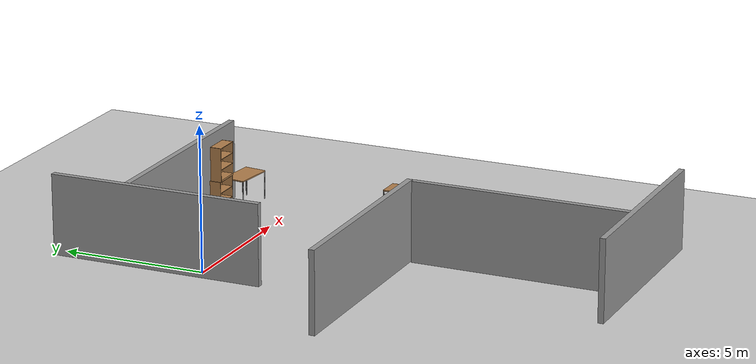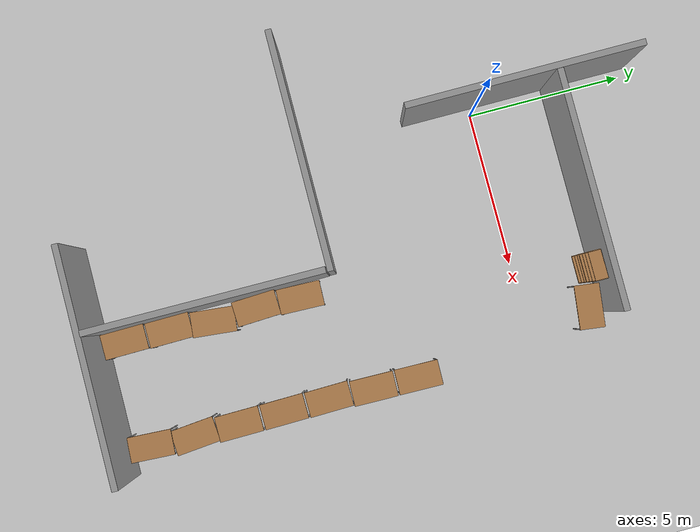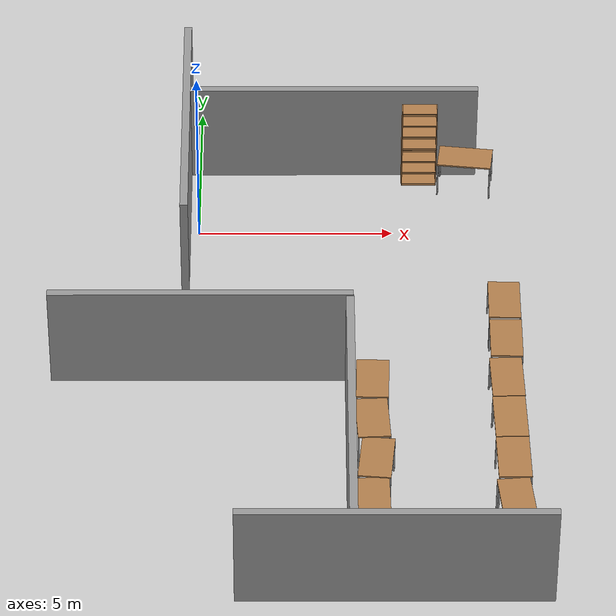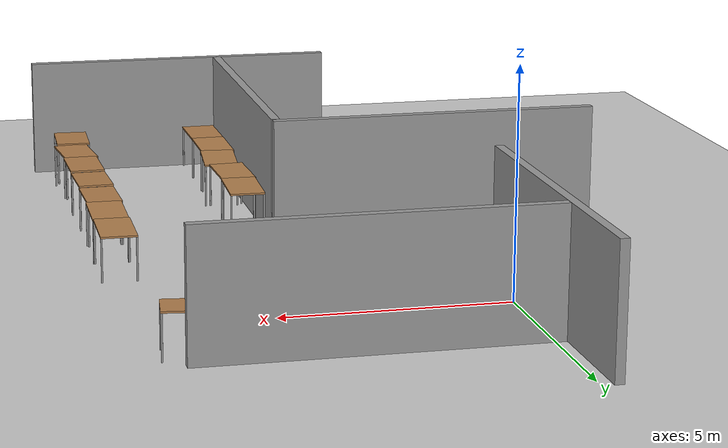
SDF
<sdf version="1.6">
 <world name="default">
  <model name="ground_plane">
   <static>1</static>
   <link name="link">
    <collision name="collision">
     <geometry><plane><normal>0 0 1</normal><size>100 100</size></plane></geometry>
     <surface><friction><ode><mu>100</mu><mu2>50</mu2></ode></friction></surface>
    </collision>
    <visual name="visual">
     <cast_shadows>0</cast_shadows>
     <geometry><plane><normal>0 0 1</normal><size>100 100</size></plane></geometry>
     <material>
      <script><uri>file://media/materials/scripts/gazebo.material</uri><name>Gazebo/Grey</name></script>
     </material>
    </visual>
   </link>
  </model>
  <model name="grey_wall">
   <static>1</static>
   <link name="link">
    <pose>0 0 1.4 0 -0 0</pose>
    <collision name="collision"><geometry><box><size>7.5 0.2 2.8</size></box></geometry></collision>
    <visual name="visual">
     <cast_shadows>0</cast_shadows>
     <geometry><box><size>7.5 0.2 2.8</size></box></geometry>
     <material>
      <script>
       <uri>model://grey_wall/materials/scripts</uri>
       <uri>model://grey_wall/materials/textures</uri>
       <name>vrc/grey_wall</name>
      </script>
     </material>
    </visual>
   </link>
   <pose>3.5138 2.55142 0 0 -0 0</pose>
  </model>
  <model name="grey_wall_2">
   <static>1</static>
   <link name="link">
    <pose>0 0 1.4 0 -0 0</pose>
    <collision name="collision"><geometry><box><size>7.5 0.2 2.8</size></box></geometry></collision>
    <visual name="visual">
     <cast_shadows>0</cast_shadows>
     <geometry><box><size>7.5 0.2 2.8</size></box></geometry>
     <material>
      <script>
       <uri>model://grey_wall/materials/scripts</uri>
       <uri>model://grey_wall/materials/textures</uri>
       <name>vrc/grey_wall</name>
      </script>
     </material>
    </visual>
   </link>
   <pose>-0.336177 1.50281 0 0 0 -1.56581</pose>
  </model>
  <model name="grey_wall_3">
   <static>1</static>
   <link name="link">
    <pose>0 0 1.4 0 -0 0</pose>
    <collision name="collision"><geometry><box><size>7.5 0.2 2.8</size></box></geometry></collision>
    <visual name="visual">
     <cast_shadows>0</cast_shadows>
     <geometry><box><size>7.5 0.2 2.8</size></box></geometry>
     <material>
      <script>
       <uri>model://grey_wall/materials/scripts</uri>
       <uri>model://grey_wall/materials/textures</uri>
       <name>vrc/grey_wall</name>
      </script>
     </material>
    </visual>
   </link>
   <pose>0.159876 -5.6283 0 0 -0 0</pose>
  </model>
  <model name="grey_wall_4">
   <static>1</static>
   <link name="link">
    <pose>0 0 1.4 0 -0 0</pose>
    <collision name="collision"><geometry><box><size>7.5 0.2 2.8</size></box></geometry></collision>
    <visual name="visual">
     <cast_shadows>0</cast_shadows>
     <geometry><box><size>7.5 0.2 2.8</size></box></geometry>
     <material>
      <script>
       <uri>model://grey_wall/materials/scripts</uri>
       <uri>model://grey_wall/materials/textures</uri>
       <name>vrc/grey_wall</name>
      </script>
     </material>
    </visual>
   </link>
   <pose>3.82152 -9.51174 0 0 0 -1.57182</pose>
  </model>
  <model name="grey_wall_7">
   <static>1</static>
   <link name="link">
    <pose>0 0 1.4 0 -0 0</pose>
    <collision name="collision"><geometry><box><size>7.5 0.2 2.8</size></box></geometry></collision>
    <visual name="visual">
     <cast_shadows>0</cast_shadows>
     <geometry><box><size>7.5 0.2 2.8</size></box></geometry>
     <material>
      <script>
       <uri>model://grey_wall/materials/scripts</uri>
       <uri>model://grey_wall/materials/textures</uri>
       <name>vrc/grey_wall</name>
      </script>
     </material>
    </visual>
   </link>
   <pose>4.80097 -13.3442 0 0 -0 0</pose>
  </model>
  <model name="table">
   <static>0</static>
   <link name="link">
    <collision name="surface">
     <pose>0 0 1 0 -0 0</pose>
     <geometry><box><size>1.5 0.8 0.03</size></box></geometry>
     <surface><friction><ode><mu>0.6</mu><mu2>0.6</mu2></ode></friction></surface>
    </collision>
    <visual name="visual1">
     <pose>0 0 1 0 -0 0</pose>
     <geometry><box><size>1.4 0.8 0.04</size></box></geometry>
     <material>
      <script><uri>file://media/materials/scripts/gazebo.material</uri><name>Gazebo/Wood</name></script>
     </material>
    </visual>
    <collision name="front_left_leg">
     <pose>0.68 0.38 0.5 0 -0 0</pose>
     <geometry><cylinder><radius>0.02</radius><length>1</length></cylinder></geometry>
    </collision>
    <visual name="front_left_leg">
     <pose>0.68 0.38 0.5 0 -0 0</pose>
     <geometry><cylinder><radius>0.02</radius><length>1</length></cylinder></geometry>
     <material>
      <script><uri>file://media/materials/scripts/gazebo.material</uri><name>Gazebo/Grey</name></script>
     </material>
    </visual>
    <collision name="front_right_leg">
     <pose>0.68 -0.38 0.5 0 -0 0</pose>
     <geometry><cylinder><radius>0.02</radius><length>1</length></cylinder></geometry>
    </collision>
    <visual name="front_right_leg">
     <pose>0.68 -0.38 0.5 0 -0 0</pose>
     <geometry><cylinder><radius>0.02</radius><length>1</length></cylinder></geometry>
     <material>
      <script><uri>file://media/materials/scripts/gazebo.material</uri><name>Gazebo/Grey</name></script>
     </material>
    </visual>
    <collision name="back_right_leg">
     <pose>-0.68 -0.38 0.5 0 -0 0</pose>
     <geometry><cylinder><radius>0.02</radius><length>1</length></cylinder></geometry>
    </collision>
    <visual name="back_right_leg">
     <pose>-0.68 -0.38 0.5 0 -0 0</pose>
     <geometry><cylinder><radius>0.02</radius><length>1</length></cylinder></geometry>
     <material>
      <script><uri>file://media/materials/scripts/gazebo.material</uri><name>Gazebo/Grey</name></script>
     </material>
    </visual>
    <collision name="back_left_leg">
     <pose>-0.68 0.38 0.5 0 -0 0</pose>
     <geometry><cylinder><radius>0.02</radius><length>1</length></cylinder></geometry>
    </collision>
    <visual name="back_left_leg">
     <pose>-0.68 0.38 0.5 0 -0 0</pose>
     <geometry><cylinder><radius>0.02</radius><length>1</length></cylinder></geometry>
     <material>
      <script><uri>file://media/materials/scripts/gazebo.material</uri><name>Gazebo/Grey</name></script>
     </material>
    </visual>
    <inertial>
     <inertia><ixx>1</ixx><ixy>0</ixy><ixz>0</ixz><iyy>1</iyy><iyz>0</iyz><izz>1</izz></inertia>
     <mass>1</mass>
    </inertial>
   </link>
   <pose>6.95725 1.92115 -0.00016 -1.1e-05 -7.6e-05 -0.121078</pose>
  </model>
  <model name="bookshelf_0">
   <static>1</static>
   <link name="link">
    <inertial><mass>1</mass></inertial>
    <collision name="back">
     <pose>0 0.005 0.6 0 -0 0</pose>
     <geometry><box><size>0.9 0.01 1.2</size></box></geometry>
    </collision>
    <visual name="visual1">
     <pose>0 0.005 0.6 0 -0 0</pose>
     <geometry><box><size>0.9 0.01 1.2</size></box></geometry>
     <material>
      <script><uri>file://media/materials/scripts/gazebo.material</uri><name>Gazebo/Wood</name></script>
     </material>
    </visual>
    <collision name="left_side">
     <pose>0.45 -0.195 0.6 0 -0 0</pose>
     <geometry><box><size>0.02 0.4 1.2</size></box></geometry>
    </collision>
    <visual name="visual2">
     <pose>0.45 -0.195 0.6 0 -0 0</pose>
     <geometry><box><size>0.02 0.4 1.2</size></box></geometry>
     <material>
      <script><uri>file://media/materials/scripts/gazebo.material</uri><name>Gazebo/Wood</name></script>
     </material>
    </visual>
    <collision name="right_side">
     <pose>-0.45 -0.195 0.6 0 -0 0</pose>
     <geometry><box><size>0.02 0.4 1.2</size></box></geometry>
    </collision>
    <visual name="visual3">
     <pose>-0.45 -0.195 0.6 0 -0 0</pose>
     <geometry><box><size>0.02 0.4 1.2</size></box></geometry>
     <material>
      <script><uri>file://media/materials/scripts/gazebo.material</uri><name>Gazebo/Wood</name></script>
     </material>
    </visual>
    <collision name="bottom">
     <pose>0 -0.195 0.03 0 -0 0</pose>
     <geometry><box><size>0.88 0.4 0.06</size></box></geometry>
    </collision>
    <visual name="visual4">
     <pose>0 -0.195 0.03 0 -0 0</pose>
     <geometry><box><size>0.88 0.4 0.06</size></box></geometry>
     <material>
      <script><uri>file://media/materials/scripts/gazebo.material</uri><name>Gazebo/Wood</name></script>
     </material>
    </visual>
    <collision name="top">
     <pose>0 -0.195 1.19 0 -0 0</pose>
     <geometry><box><size>0.88 0.4 0.02</size></box></geometry>
    </collision>
    <visual name="visual5">
     <pose>0 -0.195 1.19 0 -0 0</pose>
     <geometry><box><size>0.88 0.4 0.02</size></box></geometry>
     <material>
      <script><uri>file://media/materials/scripts/gazebo.material</uri><name>Gazebo/Wood</name></script>
     </material>
    </visual>
    <collision name="low_shelf">
     <pose>0 -0.195 0.43 0 -0 0</pose>
     <geometry><box><size>0.88 0.4 0.02</size></box></geometry>
    </collision>
    <visual name="visual6">
     <pose>0 -0.195 0.43 0 -0 0</pose>
     <geometry><box><size>0.88 0.4 0.02</size></box></geometry>
     <material>
      <script><uri>file://media/materials/scripts/gazebo.material</uri><name>Gazebo/Wood</name></script>
     </material>
    </visual>
    <collision name="high_shelf">
     <pose>0 -0.195 0.8 0 -0 0</pose>
     <geometry><box><size>0.88 0.4 0.02</size></box></geometry>
    </collision>
    <visual name="visual7">
     <pose>0 -0.195 0.8 0 -0 0</pose>
     <geometry><box><size>0.88 0.4 0.02</size></box></geometry>
     <material>
      <script><uri>file://media/materials/scripts/gazebo.material</uri><name>Gazebo/Wood</name></script>
     </material>
    </visual>
   </link>
   <pose>5.75252 2.40431 0 0 -0 0</pose>
  </model>
  <model name="bookshelf_1">
   <static>1</static>
   <link name="link">
    <inertial><mass>1</mass></inertial>
    <collision name="back">
     <pose>0 0.005 0.6 0 -0 0</pose>
     <geometry><box><size>0.9 0.01 1.2</size></box></geometry>
    </collision>
    <visual name="visual1">
     <pose>0 0.005 0.6 0 -0 0</pose>
     <geometry><box><size>0.9 0.01 1.2</size></box></geometry>
     <material>
      <script><uri>file://media/materials/scripts/gazebo.material</uri><name>Gazebo/Wood</name></script>
     </material>
    </visual>
    <collision name="left_side">
     <pose>0.45 -0.195 0.6 0 -0 0</pose>
     <geometry><box><size>0.02 0.4 1.2</size></box></geometry>
    </collision>
    <visual name="visual2">
     <pose>0.45 -0.195 0.6 0 -0 0</pose>
     <geometry><box><size>0.02 0.4 1.2</size></box></geometry>
     <material>
      <script><uri>file://media/materials/scripts/gazebo.material</uri><name>Gazebo/Wood</name></script>
     </material>
    </visual>
    <collision name="right_side">
     <pose>-0.45 -0.195 0.6 0 -0 0</pose>
     <geometry><box><size>0.02 0.4 1.2</size></box></geometry>
    </collision>
    <visual name="visual3">
     <pose>-0.45 -0.195 0.6 0 -0 0</pose>
     <geometry><box><size>0.02 0.4 1.2</size></box></geometry>
     <material>
      <script><uri>file://media/materials/scripts/gazebo.material</uri><name>Gazebo/Wood</name></script>
     </material>
    </visual>
    <collision name="bottom">
     <pose>0 -0.195 0.03 0 -0 0</pose>
     <geometry><box><size>0.88 0.4 0.06</size></box></geometry>
    </collision>
    <visual name="visual4">
     <pose>0 -0.195 0.03 0 -0 0</pose>
     <geometry><box><size>0.88 0.4 0.06</size></box></geometry>
     <material>
      <script><uri>file://media/materials/scripts/gazebo.material</uri><name>Gazebo/Wood</name></script>
     </material>
    </visual>
    <collision name="top">
     <pose>0 -0.195 1.19 0 -0 0</pose>
     <geometry><box><size>0.88 0.4 0.02</size></box></geometry>
    </collision>
    <visual name="visual5">
     <pose>0 -0.195 1.19 0 -0 0</pose>
     <geometry><box><size>0.88 0.4 0.02</size></box></geometry>
     <material>
      <script><uri>file://media/materials/scripts/gazebo.material</uri><name>Gazebo/Wood</name></script>
     </material>
    </visual>
    <collision name="low_shelf">
     <pose>0 -0.195 0.43 0 -0 0</pose>
     <geometry><box><size>0.88 0.4 0.02</size></box></geometry>
    </collision>
    <visual name="visual6">
     <pose>0 -0.195 0.43 0 -0 0</pose>
     <geometry><box><size>0.88 0.4 0.02</size></box></geometry>
     <material>
      <script><uri>file://media/materials/scripts/gazebo.material</uri><name>Gazebo/Wood</name></script>
     </material>
    </visual>
    <collision name="high_shelf">
     <pose>0 -0.195 0.8 0 -0 0</pose>
     <geometry><box><size>0.88 0.4 0.02</size></box></geometry>
    </collision>
    <visual name="visual7">
     <pose>0 -0.195 0.8 0 -0 0</pose>
     <geometry><box><size>0.88 0.4 0.02</size></box></geometry>
     <material>
      <script><uri>file://media/materials/scripts/gazebo.material</uri><name>Gazebo/Wood</name></script>
     </material>
    </visual>
   </link>
   <pose>5.74756 2.36627 1.21604 0 -0 0</pose>
  </model>
  <model name="table_5_clone_3">
   <static>0</static>
   <link name="link">
    <collision name="surface">
     <pose>0 0 1 0 -0 0</pose>
     <geometry><box><size>1.5 0.8 0.03</size></box></geometry>
     <surface><friction><ode><mu>0.6</mu><mu2>0.6</mu2></ode></friction></surface>
    </collision>
    <visual name="visual1">
     <pose>0 0 1 0 -0 0</pose>
     <geometry><box><size>1.4 0.8 0.04</size></box></geometry>
     <material>
      <script><uri>file://media/materials/scripts/gazebo.material</uri><name>Gazebo/Wood</name></script>
     </material>
    </visual>
    <collision name="front_left_leg">
     <pose>0.68 0.38 0.5 0 -0 0</pose>
     <geometry><cylinder><radius>0.02</radius><length>1</length></cylinder></geometry>
    </collision>
    <visual name="front_left_leg">
     <pose>0.68 0.38 0.5 0 -0 0</pose>
     <geometry><cylinder><radius>0.02</radius><length>1</length></cylinder></geometry>
     <material>
      <script><uri>file://media/materials/scripts/gazebo.material</uri><name>Gazebo/Grey</name></script>
     </material>
    </visual>
    <collision name="front_right_leg">
     <pose>0.68 -0.38 0.5 0 -0 0</pose>
     <geometry><cylinder><radius>0.02</radius><length>1</length></cylinder></geometry>
    </collision>
    <visual name="front_right_leg">
     <pose>0.68 -0.38 0.5 0 -0 0</pose>
     <geometry><cylinder><radius>0.02</radius><length>1</length></cylinder></geometry>
     <material>
      <script><uri>file://media/materials/scripts/gazebo.material</uri><name>Gazebo/Grey</name></script>
     </material>
    </visual>
    <collision name="back_right_leg">
     <pose>-0.68 -0.38 0.5 0 -0 0</pose>
     <geometry><cylinder><radius>0.02</radius><length>1</length></cylinder></geometry>
    </collision>
    <visual name="back_right_leg">
     <pose>-0.68 -0.38 0.5 0 -0 0</pose>
     <geometry><cylinder><radius>0.02</radius><length>1</length></cylinder></geometry>
     <material>
      <script><uri>file://media/materials/scripts/gazebo.material</uri><name>Gazebo/Grey</name></script>
     </material>
    </visual>
    <collision name="back_left_leg">
     <pose>-0.68 0.38 0.5 0 -0 0</pose>
     <geometry><cylinder><radius>0.02</radius><length>1</length></cylinder></geometry>
    </collision>
    <visual name="back_left_leg">
     <pose>-0.68 0.38 0.5 0 -0 0</pose>
     <geometry><cylinder><radius>0.02</radius><length>1</length></cylinder></geometry>
     <material>
      <script><uri>file://media/materials/scripts/gazebo.material</uri><name>Gazebo/Grey</name></script>
     </material>
    </visual>
    <inertial>
     <inertia><ixx>1</ixx><ixy>0</ixy><ixz>0</ixz><iyy>1</iyy><iyz>0</iyz><izz>1</izz></inertia>
     <mass>1</mass>
    </inertial>
   </link>
   <pose>7.68511 -6.73105 -1.7e-05 -1e-06 -5e-06 -1.54956</pose>
  </model>
  <model name="table_5_clone_4">
   <static>0</static>
   <link name="link">
    <collision name="surface">
     <pose>0 0 1 0 -0 0</pose>
     <geometry><box><size>1.5 0.8 0.03</size></box></geometry>
     <surface><friction><ode><mu>0.6</mu><mu2>0.6</mu2></ode></friction></surface>
    </collision>
    <visual name="visual1">
     <pose>0 0 1 0 -0 0</pose>
     <geometry><box><size>1.4 0.8 0.04</size></box></geometry>
     <material>
      <script><uri>file://media/materials/scripts/gazebo.material</uri><name>Gazebo/Wood</name></script>
     </material>
    </visual>
    <collision name="front_left_leg">
     <pose>0.68 0.38 0.5 0 -0 0</pose>
     <geometry><cylinder><radius>0.02</radius><length>1</length></cylinder></geometry>
    </collision>
    <visual name="front_left_leg">
     <pose>0.68 0.38 0.5 0 -0 0</pose>
     <geometry><cylinder><radius>0.02</radius><length>1</length></cylinder></geometry>
     <material>
      <script><uri>file://media/materials/scripts/gazebo.material</uri><name>Gazebo/Grey</name></script>
     </material>
    </visual>
    <collision name="front_right_leg">
     <pose>0.68 -0.38 0.5 0 -0 0</pose>
     <geometry><cylinder><radius>0.02</radius><length>1</length></cylinder></geometry>
    </collision>
    <visual name="front_right_leg">
     <pose>0.68 -0.38 0.5 0 -0 0</pose>
     <geometry><cylinder><radius>0.02</radius><length>1</length></cylinder></geometry>
     <material>
      <script><uri>file://media/materials/scripts/gazebo.material</uri><name>Gazebo/Grey</name></script>
     </material>
    </visual>
    <collision name="back_right_leg">
     <pose>-0.68 -0.38 0.5 0 -0 0</pose>
     <geometry><cylinder><radius>0.02</radius><length>1</length></cylinder></geometry>
    </collision>
    <visual name="back_right_leg">
     <pose>-0.68 -0.38 0.5 0 -0 0</pose>
     <geometry><cylinder><radius>0.02</radius><length>1</length></cylinder></geometry>
     <material>
      <script><uri>file://media/materials/scripts/gazebo.material</uri><name>Gazebo/Grey</name></script>
     </material>
    </visual>
    <collision name="back_left_leg">
     <pose>-0.68 0.38 0.5 0 -0 0</pose>
     <geometry><cylinder><radius>0.02</radius><length>1</length></cylinder></geometry>
    </collision>
    <visual name="back_left_leg">
     <pose>-0.68 0.38 0.5 0 -0 0</pose>
     <geometry><cylinder><radius>0.02</radius><length>1</length></cylinder></geometry>
     <material>
      <script><uri>file://media/materials/scripts/gazebo.material</uri><name>Gazebo/Grey</name></script>
     </material>
    </visual>
    <inertial>
     <inertia><ixx>1</ixx><ixy>0</ixy><ixz>0</ixz><iyy>1</iyy><iyz>0</iyz><izz>1</izz></inertia>
     <mass>1</mass>
    </inertial>
   </link>
   <pose>7.69986 -8.16028 0.015103 0 0.021577 -1.54957</pose>
  </model>
  <model name="table_5_clone_5">
   <static>0</static>
   <link name="link">
    <collision name="surface">
     <pose>0 0 1 0 -0 0</pose>
     <geometry><box><size>1.5 0.8 0.03</size></box></geometry>
     <surface><friction><ode><mu>0.6</mu><mu2>0.6</mu2></ode></friction></surface>
    </collision>
    <visual name="visual1">
     <pose>0 0 1 0 -0 0</pose>
     <geometry><box><size>1.4 0.8 0.04</size></box></geometry>
     <material>
      <script><uri>file://media/materials/scripts/gazebo.material</uri><name>Gazebo/Wood</name></script>
     </material>
    </visual>
    <collision name="front_left_leg">
     <pose>0.68 0.38 0.5 0 -0 0</pose>
     <geometry><cylinder><radius>0.02</radius><length>1</length></cylinder></geometry>
    </collision>
    <visual name="front_left_leg">
     <pose>0.68 0.38 0.5 0 -0 0</pose>
     <geometry><cylinder><radius>0.02</radius><length>1</length></cylinder></geometry>
     <material>
      <script><uri>file://media/materials/scripts/gazebo.material</uri><name>Gazebo/Grey</name></script>
     </material>
    </visual>
    <collision name="front_right_leg">
     <pose>0.68 -0.38 0.5 0 -0 0</pose>
     <geometry><cylinder><radius>0.02</radius><length>1</length></cylinder></geometry>
    </collision>
    <visual name="front_right_leg">
     <pose>0.68 -0.38 0.5 0 -0 0</pose>
     <geometry><cylinder><radius>0.02</radius><length>1</length></cylinder></geometry>
     <material>
      <script><uri>file://media/materials/scripts/gazebo.material</uri><name>Gazebo/Grey</name></script>
     </material>
    </visual>
    <collision name="back_right_leg">
     <pose>-0.68 -0.38 0.5 0 -0 0</pose>
     <geometry><cylinder><radius>0.02</radius><length>1</length></cylinder></geometry>
    </collision>
    <visual name="back_right_leg">
     <pose>-0.68 -0.38 0.5 0 -0 0</pose>
     <geometry><cylinder><radius>0.02</radius><length>1</length></cylinder></geometry>
     <material>
      <script><uri>file://media/materials/scripts/gazebo.material</uri><name>Gazebo/Grey</name></script>
     </material>
    </visual>
    <collision name="back_left_leg">
     <pose>-0.68 0.38 0.5 0 -0 0</pose>
     <geometry><cylinder><radius>0.02</radius><length>1</length></cylinder></geometry>
    </collision>
    <visual name="back_left_leg">
     <pose>-0.68 0.38 0.5 0 -0 0</pose>
     <geometry><cylinder><radius>0.02</radius><length>1</length></cylinder></geometry>
     <material>
      <script><uri>file://media/materials/scripts/gazebo.material</uri><name>Gazebo/Grey</name></script>
     </material>
    </visual>
    <inertial>
     <inertia><ixx>1</ixx><ixy>0</ixy><ixz>0</ixz><iyy>1</iyy><iyz>0</iyz><izz>1</izz></inertia>
     <mass>1</mass>
    </inertial>
   </link>
   <pose>7.68689 -12.4351 0.016255 -9e-06 0.023245 -1.61942</pose>
  </model>
  <model name="table_5_clone_6">
   <static>0</static>
   <link name="link">
    <collision name="surface">
     <pose>0 0 1 0 -0 0</pose>
     <geometry><box><size>1.5 0.8 0.03</size></box></geometry>
     <surface><friction><ode><mu>0.6</mu><mu2>0.6</mu2></ode></friction></surface>
    </collision>
    <visual name="visual1">
     <pose>0 0 1 0 -0 0</pose>
     <geometry><box><size>1.4 0.8 0.04</size></box></geometry>
     <material>
      <script><uri>file://media/materials/scripts/gazebo.material</uri><name>Gazebo/Wood</name></script>
     </material>
    </visual>
    <collision name="front_left_leg">
     <pose>0.68 0.38 0.5 0 -0 0</pose>
     <geometry><cylinder><radius>0.02</radius><length>1</length></cylinder></geometry>
    </collision>
    <visual name="front_left_leg">
     <pose>0.68 0.38 0.5 0 -0 0</pose>
     <geometry><cylinder><radius>0.02</radius><length>1</length></cylinder></geometry>
     <material>
      <script><uri>file://media/materials/scripts/gazebo.material</uri><name>Gazebo/Grey</name></script>
     </material>
    </visual>
    <collision name="front_right_leg">
     <pose>0.68 -0.38 0.5 0 -0 0</pose>
     <geometry><cylinder><radius>0.02</radius><length>1</length></cylinder></geometry>
    </collision>
    <visual name="front_right_leg">
     <pose>0.68 -0.38 0.5 0 -0 0</pose>
     <geometry><cylinder><radius>0.02</radius><length>1</length></cylinder></geometry>
     <material>
      <script><uri>file://media/materials/scripts/gazebo.material</uri><name>Gazebo/Grey</name></script>
     </material>
    </visual>
    <collision name="back_right_leg">
     <pose>-0.68 -0.38 0.5 0 -0 0</pose>
     <geometry><cylinder><radius>0.02</radius><length>1</length></cylinder></geometry>
    </collision>
    <visual name="back_right_leg">
     <pose>-0.68 -0.38 0.5 0 -0 0</pose>
     <geometry><cylinder><radius>0.02</radius><length>1</length></cylinder></geometry>
     <material>
      <script><uri>file://media/materials/scripts/gazebo.material</uri><name>Gazebo/Grey</name></script>
     </material>
    </visual>
    <collision name="back_left_leg">
     <pose>-0.68 0.38 0.5 0 -0 0</pose>
     <geometry><cylinder><radius>0.02</radius><length>1</length></cylinder></geometry>
    </collision>
    <visual name="back_left_leg">
     <pose>-0.68 0.38 0.5 0 -0 0</pose>
     <geometry><cylinder><radius>0.02</radius><length>1</length></cylinder></geometry>
     <material>
      <script><uri>file://media/materials/scripts/gazebo.material</uri><name>Gazebo/Grey</name></script>
     </material>
    </visual>
    <inertial>
     <inertia><ixx>1</ixx><ixy>0</ixy><ixz>0</ixz><iyy>1</iyy><iyz>0</iyz><izz>1</izz></inertia>
     <mass>1</mass>
    </inertial>
   </link>
   <pose>7.73634 -11.057 -1.3e-05 -2e-06 -5e-06 -1.47784</pose>
  </model>
  <model name="table_5_clone_7">
   <static>0</static>
   <link name="link">
    <collision name="surface">
     <pose>0 0 1 0 -0 0</pose>
     <geometry><box><size>1.5 0.8 0.03</size></box></geometry>
     <surface><friction><ode><mu>0.6</mu><mu2>0.6</mu2></ode></friction></surface>
    </collision>
    <visual name="visual1">
     <pose>0 0 1 0 -0 0</pose>
     <geometry><box><size>1.4 0.8 0.04</size></box></geometry>
     <material>
      <script><uri>file://media/materials/scripts/gazebo.material</uri><name>Gazebo/Wood</name></script>
     </material>
    </visual>
    <collision name="front_left_leg">
     <pose>0.68 0.38 0.5 0 -0 0</pose>
     <geometry><cylinder><radius>0.02</radius><length>1</length></cylinder></geometry>
    </collision>
    <visual name="front_left_leg">
     <pose>0.68 0.38 0.5 0 -0 0</pose>
     <geometry><cylinder><radius>0.02</radius><length>1</length></cylinder></geometry>
     <material>
      <script><uri>file://media/materials/scripts/gazebo.material</uri><name>Gazebo/Grey</name></script>
     </material>
    </visual>
    <collision name="front_right_leg">
     <pose>0.68 -0.38 0.5 0 -0 0</pose>
     <geometry><cylinder><radius>0.02</radius><length>1</length></cylinder></geometry>
    </collision>
    <visual name="front_right_leg">
     <pose>0.68 -0.38 0.5 0 -0 0</pose>
     <geometry><cylinder><radius>0.02</radius><length>1</length></cylinder></geometry>
     <material>
      <script><uri>file://media/materials/scripts/gazebo.material</uri><name>Gazebo/Grey</name></script>
     </material>
    </visual>
    <collision name="back_right_leg">
     <pose>-0.68 -0.38 0.5 0 -0 0</pose>
     <geometry><cylinder><radius>0.02</radius><length>1</length></cylinder></geometry>
    </collision>
    <visual name="back_right_leg">
     <pose>-0.68 -0.38 0.5 0 -0 0</pose>
     <geometry><cylinder><radius>0.02</radius><length>1</length></cylinder></geometry>
     <material>
      <script><uri>file://media/materials/scripts/gazebo.material</uri><name>Gazebo/Grey</name></script>
     </material>
    </visual>
    <collision name="back_left_leg">
     <pose>-0.68 0.38 0.5 0 -0 0</pose>
     <geometry><cylinder><radius>0.02</radius><length>1</length></cylinder></geometry>
    </collision>
    <visual name="back_left_leg">
     <pose>-0.68 0.38 0.5 0 -0 0</pose>
     <geometry><cylinder><radius>0.02</radius><length>1</length></cylinder></geometry>
     <material>
      <script><uri>file://media/materials/scripts/gazebo.material</uri><name>Gazebo/Grey</name></script>
     </material>
    </visual>
    <inertial>
     <inertia><ixx>1</ixx><ixy>0</ixy><ixz>0</ixz><iyy>1</iyy><iyz>0</iyz><izz>1</izz></inertia>
     <mass>1</mass>
    </inertial>
   </link>
   <pose>7.71813 -9.63527 0.029891 -5e-05 -0.000169 -1.55781</pose>
  </model>
  <model name="table_5_clone_5_clone">
   <static>0</static>
   <link name="link">
    <collision name="surface">
     <pose>0 0 1 0 -0 0</pose>
     <geometry><box><size>1.5 0.8 0.03</size></box></geometry>
     <surface><friction><ode><mu>0.6</mu><mu2>0.6</mu2></ode></friction></surface>
    </collision>
    <visual name="visual1">
     <pose>0 0 1 0 -0 0</pose>
     <geometry><box><size>1.4 0.8 0.04</size></box></geometry>
     <material>
      <script><uri>file://media/materials/scripts/gazebo.material</uri><name>Gazebo/Wood</name></script>
     </material>
    </visual>
    <collision name="front_left_leg">
     <pose>0.68 0.38 0.5 0 -0 0</pose>
     <geometry><cylinder><radius>0.02</radius><length>1</length></cylinder></geometry>
    </collision>
    <visual name="front_left_leg">
     <pose>0.68 0.38 0.5 0 -0 0</pose>
     <geometry><cylinder><radius>0.02</radius><length>1</length></cylinder></geometry>
     <material>
      <script><uri>file://media/materials/scripts/gazebo.material</uri><name>Gazebo/Grey</name></script>
     </material>
    </visual>
    <collision name="front_right_leg">
     <pose>0.68 -0.38 0.5 0 -0 0</pose>
     <geometry><cylinder><radius>0.02</radius><length>1</length></cylinder></geometry>
    </collision>
    <visual name="front_right_leg">
     <pose>0.68 -0.38 0.5 0 -0 0</pose>
     <geometry><cylinder><radius>0.02</radius><length>1</length></cylinder></geometry>
     <material>
      <script><uri>file://media/materials/scripts/gazebo.material</uri><name>Gazebo/Grey</name></script>
     </material>
    </visual>
    <collision name="back_right_leg">
     <pose>-0.68 -0.38 0.5 0 -0 0</pose>
     <geometry><cylinder><radius>0.02</radius><length>1</length></cylinder></geometry>
    </collision>
    <visual name="back_right_leg">
     <pose>-0.68 -0.38 0.5 0 -0 0</pose>
     <geometry><cylinder><radius>0.02</radius><length>1</length></cylinder></geometry>
     <material>
      <script><uri>file://media/materials/scripts/gazebo.material</uri><name>Gazebo/Grey</name></script>
     </material>
    </visual>
    <collision name="back_left_leg">
     <pose>-0.68 0.38 0.5 0 -0 0</pose>
     <geometry><cylinder><radius>0.02</radius><length>1</length></cylinder></geometry>
    </collision>
    <visual name="back_left_leg">
     <pose>-0.68 0.38 0.5 0 -0 0</pose>
     <geometry><cylinder><radius>0.02</radius><length>1</length></cylinder></geometry>
     <material>
      <script><uri>file://media/materials/scripts/gazebo.material</uri><name>Gazebo/Grey</name></script>
     </material>
    </visual>
    <inertial>
     <inertia><ixx>1</ixx><ixy>0</ixy><ixz>0</ixz><iyy>1</iyy><iyz>0</iyz><izz>1</izz></inertia>
     <mass>1</mass>
    </inertial>
   </link>
   <pose>4.33264 -12.4885 5e-06 -1e-05 1e-06 -1.55634</pose>
  </model>
  <model name="table_5_clone_5_clone_0">
   <static>0</static>
   <link name="link">
    <collision name="surface">
     <pose>0 0 1 0 -0 0</pose>
     <geometry><box><size>1.5 0.8 0.03</size></box></geometry>
     <surface><friction><ode><mu>0.6</mu><mu2>0.6</mu2></ode></friction></surface>
    </collision>
    <visual name="visual1">
     <pose>0 0 1 0 -0 0</pose>
     <geometry><box><size>1.4 0.8 0.04</size></box></geometry>
     <material>
      <script><uri>file://media/materials/scripts/gazebo.material</uri><name>Gazebo/Wood</name></script>
     </material>
    </visual>
    <collision name="front_left_leg">
     <pose>0.68 0.38 0.5 0 -0 0</pose>
     <geometry><cylinder><radius>0.02</radius><length>1</length></cylinder></geometry>
    </collision>
    <visual name="front_left_leg">
     <pose>0.68 0.38 0.5 0 -0 0</pose>
     <geometry><cylinder><radius>0.02</radius><length>1</length></cylinder></geometry>
     <material>
      <script><uri>file://media/materials/scripts/gazebo.material</uri><name>Gazebo/Grey</name></script>
     </material>
    </visual>
    <collision name="front_right_leg">
     <pose>0.68 -0.38 0.5 0 -0 0</pose>
     <geometry><cylinder><radius>0.02</radius><length>1</length></cylinder></geometry>
    </collision>
    <visual name="front_right_leg">
     <pose>0.68 -0.38 0.5 0 -0 0</pose>
     <geometry><cylinder><radius>0.02</radius><length>1</length></cylinder></geometry>
     <material>
      <script><uri>file://media/materials/scripts/gazebo.material</uri><name>Gazebo/Grey</name></script>
     </material>
    </visual>
    <collision name="back_right_leg">
     <pose>-0.68 -0.38 0.5 0 -0 0</pose>
     <geometry><cylinder><radius>0.02</radius><length>1</length></cylinder></geometry>
    </collision>
    <visual name="back_right_leg">
     <pose>-0.68 -0.38 0.5 0 -0 0</pose>
     <geometry><cylinder><radius>0.02</radius><length>1</length></cylinder></geometry>
     <material>
      <script><uri>file://media/materials/scripts/gazebo.material</uri><name>Gazebo/Grey</name></script>
     </material>
    </visual>
    <collision name="back_left_leg">
     <pose>-0.68 0.38 0.5 0 -0 0</pose>
     <geometry><cylinder><radius>0.02</radius><length>1</length></cylinder></geometry>
    </collision>
    <visual name="back_left_leg">
     <pose>-0.68 0.38 0.5 0 -0 0</pose>
     <geometry><cylinder><radius>0.02</radius><length>1</length></cylinder></geometry>
     <material>
      <script><uri>file://media/materials/scripts/gazebo.material</uri><name>Gazebo/Grey</name></script>
     </material>
    </visual>
    <inertial>
     <inertia><ixx>1</ixx><ixy>0</ixy><ixz>0</ixz><iyy>1</iyy><iyz>0</iyz><izz>1</izz></inertia>
     <mass>1</mass>
    </inertial>
   </link>
   <pose>4.33169 -11.0592 0.015136 -0.000145 -0.021577 -1.55631</pose>
  </model>
  <model name="table_5_clone_5_clone_1">
   <static>0</static>
   <link name="link">
    <collision name="surface">
     <pose>0 0 1 0 -0 0</pose>
     <geometry><box><size>1.5 0.8 0.03</size></box></geometry>
     <surface><friction><ode><mu>0.6</mu><mu2>0.6</mu2></ode></friction></surface>
    </collision>
    <visual name="visual1">
     <pose>0 0 1 0 -0 0</pose>
     <geometry><box><size>1.4 0.8 0.04</size></box></geometry>
     <material>
      <script><uri>file://media/materials/scripts/gazebo.material</uri><name>Gazebo/Wood</name></script>
     </material>
    </visual>
    <collision name="front_left_leg">
     <pose>0.68 0.38 0.5 0 -0 0</pose>
     <geometry><cylinder><radius>0.02</radius><length>1</length></cylinder></geometry>
    </collision>
    <visual name="front_left_leg">
     <pose>0.68 0.38 0.5 0 -0 0</pose>
     <geometry><cylinder><radius>0.02</radius><length>1</length></cylinder></geometry>
     <material>
      <script><uri>file://media/materials/scripts/gazebo.material</uri><name>Gazebo/Grey</name></script>
     </material>
    </visual>
    <collision name="front_right_leg">
     <pose>0.68 -0.38 0.5 0 -0 0</pose>
     <geometry><cylinder><radius>0.02</radius><length>1</length></cylinder></geometry>
    </collision>
    <visual name="front_right_leg">
     <pose>0.68 -0.38 0.5 0 -0 0</pose>
     <geometry><cylinder><radius>0.02</radius><length>1</length></cylinder></geometry>
     <material>
      <script><uri>file://media/materials/scripts/gazebo.material</uri><name>Gazebo/Grey</name></script>
     </material>
    </visual>
    <collision name="back_right_leg">
     <pose>-0.68 -0.38 0.5 0 -0 0</pose>
     <geometry><cylinder><radius>0.02</radius><length>1</length></cylinder></geometry>
    </collision>
    <visual name="back_right_leg">
     <pose>-0.68 -0.38 0.5 0 -0 0</pose>
     <geometry><cylinder><radius>0.02</radius><length>1</length></cylinder></geometry>
     <material>
      <script><uri>file://media/materials/scripts/gazebo.material</uri><name>Gazebo/Grey</name></script>
     </material>
    </visual>
    <collision name="back_left_leg">
     <pose>-0.68 0.38 0.5 0 -0 0</pose>
     <geometry><cylinder><radius>0.02</radius><length>1</length></cylinder></geometry>
    </collision>
    <visual name="back_left_leg">
     <pose>-0.68 0.38 0.5 0 -0 0</pose>
     <geometry><cylinder><radius>0.02</radius><length>1</length></cylinder></geometry>
     <material>
      <script><uri>file://media/materials/scripts/gazebo.material</uri><name>Gazebo/Grey</name></script>
     </material>
    </visual>
    <inertial>
     <inertia><ixx>1</ixx><ixy>0</ixy><ixz>0</ixz><iyy>1</iyy><iyz>0</iyz><izz>1</izz></inertia>
     <mass>1</mass>
    </inertial>
   </link>
   <pose>4.42652 -9.65264 0.015319 1.2e-05 -0.02188 -1.66487</pose>
  </model>
  <model name="table_5_clone_5_clone_2">
   <static>0</static>
   <link name="link">
    <collision name="surface">
     <pose>0 0 1 0 -0 0</pose>
     <geometry><box><size>1.5 0.8 0.03</size></box></geometry>
     <surface><friction><ode><mu>0.6</mu><mu2>0.6</mu2></ode></friction></surface>
    </collision>
    <visual name="visual1">
     <pose>0 0 1 0 -0 0</pose>
     <geometry><box><size>1.4 0.8 0.04</size></box></geometry>
     <material>
      <script><uri>file://media/materials/scripts/gazebo.material</uri><name>Gazebo/Wood</name></script>
     </material>
    </visual>
    <collision name="front_left_leg">
     <pose>0.68 0.38 0.5 0 -0 0</pose>
     <geometry><cylinder><radius>0.02</radius><length>1</length></cylinder></geometry>
    </collision>
    <visual name="front_left_leg">
     <pose>0.68 0.38 0.5 0 -0 0</pose>
     <geometry><cylinder><radius>0.02</radius><length>1</length></cylinder></geometry>
     <material>
      <script><uri>file://media/materials/scripts/gazebo.material</uri><name>Gazebo/Grey</name></script>
     </material>
    </visual>
    <collision name="front_right_leg">
     <pose>0.68 -0.38 0.5 0 -0 0</pose>
     <geometry><cylinder><radius>0.02</radius><length>1</length></cylinder></geometry>
    </collision>
    <visual name="front_right_leg">
     <pose>0.68 -0.38 0.5 0 -0 0</pose>
     <geometry><cylinder><radius>0.02</radius><length>1</length></cylinder></geometry>
     <material>
      <script><uri>file://media/materials/scripts/gazebo.material</uri><name>Gazebo/Grey</name></script>
     </material>
    </visual>
    <collision name="back_right_leg">
     <pose>-0.68 -0.38 0.5 0 -0 0</pose>
     <geometry><cylinder><radius>0.02</radius><length>1</length></cylinder></geometry>
    </collision>
    <visual name="back_right_leg">
     <pose>-0.68 -0.38 0.5 0 -0 0</pose>
     <geometry><cylinder><radius>0.02</radius><length>1</length></cylinder></geometry>
     <material>
      <script><uri>file://media/materials/scripts/gazebo.material</uri><name>Gazebo/Grey</name></script>
     </material>
    </visual>
    <collision name="back_left_leg">
     <pose>-0.68 0.38 0.5 0 -0 0</pose>
     <geometry><cylinder><radius>0.02</radius><length>1</length></cylinder></geometry>
    </collision>
    <visual name="back_left_leg">
     <pose>-0.68 0.38 0.5 0 -0 0</pose>
     <geometry><cylinder><radius>0.02</radius><length>1</length></cylinder></geometry>
     <material>
      <script><uri>file://media/materials/scripts/gazebo.material</uri><name>Gazebo/Grey</name></script>
     </material>
    </visual>
    <inertial>
     <inertia><ixx>1</ixx><ixy>0</ixy><ixz>0</ixz><iyy>1</iyy><iyz>0</iyz><izz>1</izz></inertia>
     <mass>1</mass>
    </inertial>
   </link>
   <pose>4.35858 -8.24988 0.015556 -0.001618 -0.021346 -1.52271</pose>
  </model>
  <model name="table_5_clone_5_clone_3">
   <static>0</static>
   <link name="link">
    <collision name="surface">
     <pose>0 0 1 0 -0 0</pose>
     <geometry><box><size>1.5 0.8 0.03</size></box></geometry>
     <surface><friction><ode><mu>0.6</mu><mu2>0.6</mu2></ode></friction></surface>
    </collision>
    <visual name="visual1">
     <pose>0 0 1 0 -0 0</pose>
     <geometry><box><size>1.4 0.8 0.04</size></box></geometry>
     <material>
      <script><uri>file://media/materials/scripts/gazebo.material</uri><name>Gazebo/Wood</name></script>
     </material>
    </visual>
    <collision name="front_left_leg">
     <pose>0.68 0.38 0.5 0 -0 0</pose>
     <geometry><cylinder><radius>0.02</radius><length>1</length></cylinder></geometry>
    </collision>
    <visual name="front_left_leg">
     <pose>0.68 0.38 0.5 0 -0 0</pose>
     <geometry><cylinder><radius>0.02</radius><length>1</length></cylinder></geometry>
     <material>
      <script><uri>file://media/materials/scripts/gazebo.material</uri><name>Gazebo/Grey</name></script>
     </material>
    </visual>
    <collision name="front_right_leg">
     <pose>0.68 -0.38 0.5 0 -0 0</pose>
     <geometry><cylinder><radius>0.02</radius><length>1</length></cylinder></geometry>
    </collision>
    <visual name="front_right_leg">
     <pose>0.68 -0.38 0.5 0 -0 0</pose>
     <geometry><cylinder><radius>0.02</radius><length>1</length></cylinder></geometry>
     <material>
      <script><uri>file://media/materials/scripts/gazebo.material</uri><name>Gazebo/Grey</name></script>
     </material>
    </visual>
    <collision name="back_right_leg">
     <pose>-0.68 -0.38 0.5 0 -0 0</pose>
     <geometry><cylinder><radius>0.02</radius><length>1</length></cylinder></geometry>
    </collision>
    <visual name="back_right_leg">
     <pose>-0.68 -0.38 0.5 0 -0 0</pose>
     <geometry><cylinder><radius>0.02</radius><length>1</length></cylinder></geometry>
     <material>
      <script><uri>file://media/materials/scripts/gazebo.material</uri><name>Gazebo/Grey</name></script>
     </material>
    </visual>
    <collision name="back_left_leg">
     <pose>-0.68 0.38 0.5 0 -0 0</pose>
     <geometry><cylinder><radius>0.02</radius><length>1</length></cylinder></geometry>
    </collision>
    <visual name="back_left_leg">
     <pose>-0.68 0.38 0.5 0 -0 0</pose>
     <geometry><cylinder><radius>0.02</radius><length>1</length></cylinder></geometry>
     <material>
      <script><uri>file://media/materials/scripts/gazebo.material</uri><name>Gazebo/Grey</name></script>
     </material>
    </visual>
    <inertial>
     <inertia><ixx>1</ixx><ixy>0</ixy><ixz>0</ixz><iyy>1</iyy><iyz>0</iyz><izz>1</izz></inertia>
     <mass>1</mass>
    </inertial>
   </link>
   <pose>4.38086 -6.82644 0.015044 -2.4e-05 -0.021479 -1.59569</pose>
  </model>
  <model name="table_5_clone_2_clone_0">
   <static>0</static>
   <link name="link">
    <collision name="surface">
     <pose>0 0 1 0 -0 0</pose>
     <geometry><box><size>1.5 0.8 0.03</size></box></geometry>
     <surface><friction><ode><mu>0.6</mu><mu2>0.6</mu2></ode></friction></surface>
    </collision>
    <visual name="visual1">
     <pose>0 0 1 0 -0 0</pose>
     <geometry><box><size>1.4 0.8 0.04</size></box></geometry>
     <material>
      <script><uri>file://media/materials/scripts/gazebo.material</uri><name>Gazebo/Wood</name></script>
     </material>
    </visual>
    <collision name="front_left_leg">
     <pose>0.68 0.38 0.5 0 -0 0</pose>
     <geometry><cylinder><radius>0.02</radius><length>1</length></cylinder></geometry>
    </collision>
    <visual name="front_left_leg">
     <pose>0.68 0.38 0.5 0 -0 0</pose>
     <geometry><cylinder><radius>0.02</radius><length>1</length></cylinder></geometry>
     <material>
      <script><uri>file://media/materials/scripts/gazebo.material</uri><name>Gazebo/Grey</name></script>
     </material>
    </visual>
    <collision name="front_right_leg">
     <pose>0.68 -0.38 0.5 0 -0 0</pose>
     <geometry><cylinder><radius>0.02</radius><length>1</length></cylinder></geometry>
    </collision>
    <visual name="front_right_leg">
     <pose>0.68 -0.38 0.5 0 -0 0</pose>
     <geometry><cylinder><radius>0.02</radius><length>1</length></cylinder></geometry>
     <material>
      <script><uri>file://media/materials/scripts/gazebo.material</uri><name>Gazebo/Grey</name></script>
     </material>
    </visual>
    <collision name="back_right_leg">
     <pose>-0.68 -0.38 0.5 0 -0 0</pose>
     <geometry><cylinder><radius>0.02</radius><length>1</length></cylinder></geometry>
    </collision>
    <visual name="back_right_leg">
     <pose>-0.68 -0.38 0.5 0 -0 0</pose>
     <geometry><cylinder><radius>0.02</radius><length>1</length></cylinder></geometry>
     <material>
      <script><uri>file://media/materials/scripts/gazebo.material</uri><name>Gazebo/Grey</name></script>
     </material>
    </visual>
    <collision name="back_left_leg">
     <pose>-0.68 0.38 0.5 0 -0 0</pose>
     <geometry><cylinder><radius>0.02</radius><length>1</length></cylinder></geometry>
    </collision>
    <visual name="back_left_leg">
     <pose>-0.68 0.38 0.5 0 -0 0</pose>
     <geometry><cylinder><radius>0.02</radius><length>1</length></cylinder></geometry>
     <material>
      <script><uri>file://media/materials/scripts/gazebo.material</uri><name>Gazebo/Grey</name></script>
     </material>
    </visual>
    <inertial>
     <inertia><ixx>1</ixx><ixy>0</ixy><ixz>0</ixz><iyy>1</iyy><iyz>0</iyz><izz>1</izz></inertia>
     <mass>1</mass>
    </inertial>
   </link>
   <pose>7.72255 -5.31509 0.015393 0 -0.022008 -1.58525</pose>
  </model>
  <model name="table_6_clone">
   <static>0</static>
   <link name="link">
    <collision name="surface">
     <pose>0 0 1 0 -0 0</pose>
     <geometry><box><size>1.5 0.8 0.03</size></box></geometry>
     <surface><friction><ode><mu>0.6</mu><mu2>0.6</mu2></ode></friction></surface>
    </collision>
    <visual name="visual1">
     <pose>0 0 1 0 -0 0</pose>
     <geometry><box><size>1.4 0.8 0.04</size></box></geometry>
     <material>
      <script><uri>file://media/materials/scripts/gazebo.material</uri><name>Gazebo/Wood</name></script>
     </material>
    </visual>
    <collision name="front_left_leg">
     <pose>0.68 0.38 0.5 0 -0 0</pose>
     <geometry><cylinder><radius>0.02</radius><length>1</length></cylinder></geometry>
    </collision>
    <visual name="front_left_leg">
     <pose>0.68 0.38 0.5 0 -0 0</pose>
     <geometry><cylinder><radius>0.02</radius><length>1</length></cylinder></geometry>
     <material>
      <script><uri>file://media/materials/scripts/gazebo.material</uri><name>Gazebo/Grey</name></script>
     </material>
    </visual>
    <collision name="front_right_leg">
     <pose>0.68 -0.38 0.5 0 -0 0</pose>
     <geometry><cylinder><radius>0.02</radius><length>1</length></cylinder></geometry>
    </collision>
    <visual name="front_right_leg">
     <pose>0.68 -0.38 0.5 0 -0 0</pose>
     <geometry><cylinder><radius>0.02</radius><length>1</length></cylinder></geometry>
     <material>
      <script><uri>file://media/materials/scripts/gazebo.material</uri><name>Gazebo/Grey</name></script>
     </material>
    </visual>
    <collision name="back_right_leg">
     <pose>-0.68 -0.38 0.5 0 -0 0</pose>
     <geometry><cylinder><radius>0.02</radius><length>1</length></cylinder></geometry>
    </collision>
    <visual name="back_right_leg">
     <pose>-0.68 -0.38 0.5 0 -0 0</pose>
     <geometry><cylinder><radius>0.02</radius><length>1</length></cylinder></geometry>
     <material>
      <script><uri>file://media/materials/scripts/gazebo.material</uri><name>Gazebo/Grey</name></script>
     </material>
    </visual>
    <collision name="back_left_leg">
     <pose>-0.68 0.38 0.5 0 -0 0</pose>
     <geometry><cylinder><radius>0.02</radius><length>1</length></cylinder></geometry>
    </collision>
    <visual name="back_left_leg">
     <pose>-0.68 0.38 0.5 0 -0 0</pose>
     <geometry><cylinder><radius>0.02</radius><length>1</length></cylinder></geometry>
     <material>
      <script><uri>file://media/materials/scripts/gazebo.material</uri><name>Gazebo/Grey</name></script>
     </material>
    </visual>
    <inertial>
     <inertia><ixx>1</ixx><ixy>0</ixy><ixz>0</ixz><iyy>1</iyy><iyz>0</iyz><izz>1</izz></inertia>
     <mass>1</mass>
    </inertial>
   </link>
   <pose>7.73562 -3.86348 0.01446 -4e-06 -0.020677 -1.58522</pose>
  </model>
 </world>
</sdf>
